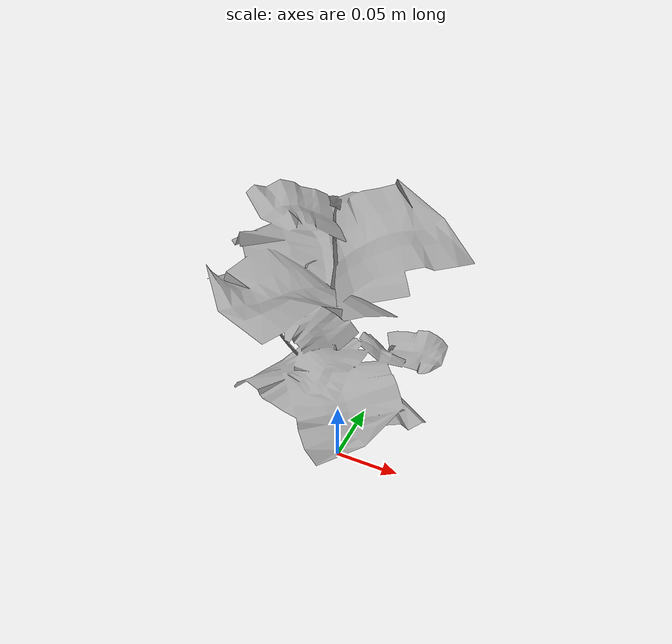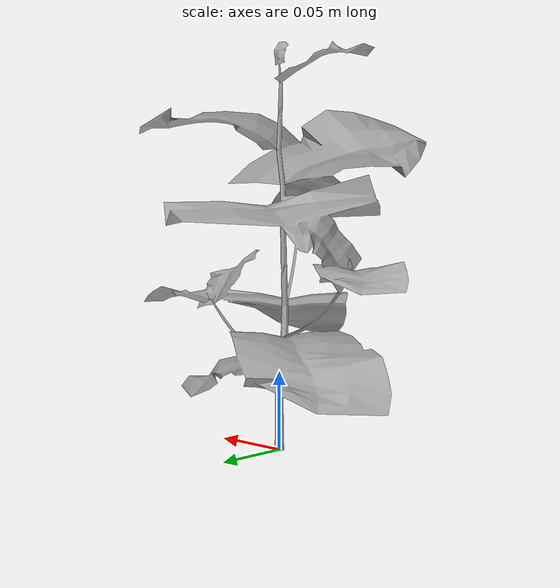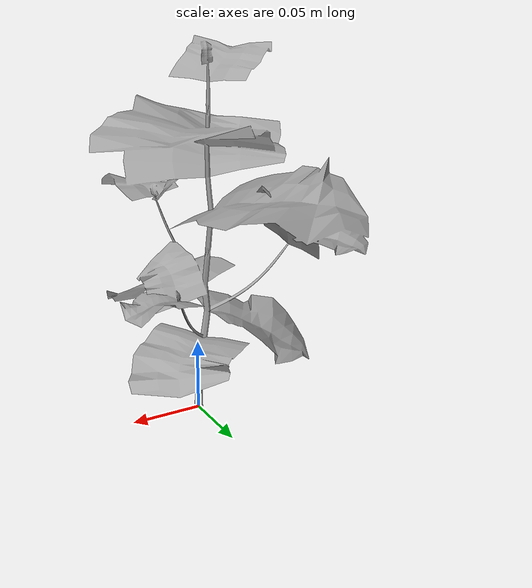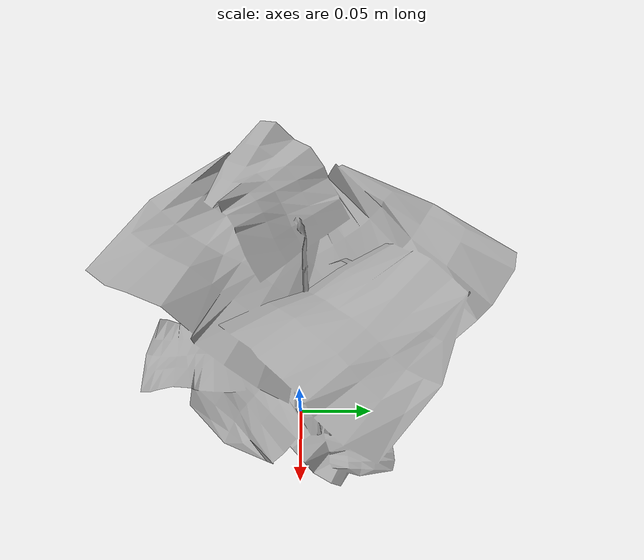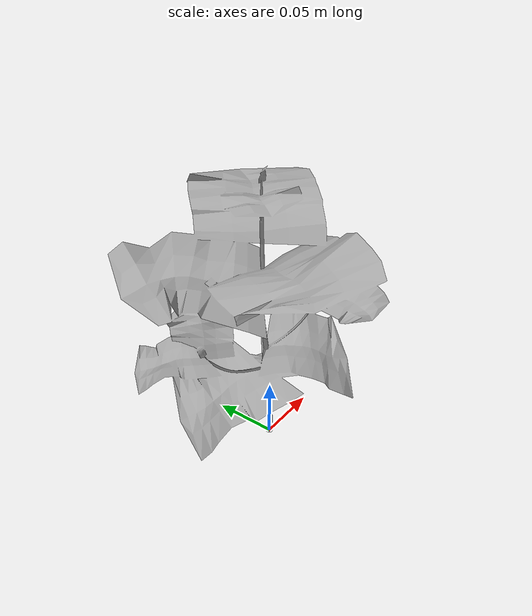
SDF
<?xml version="1.0" ?>
<sdf version="1.5">
	<model name="cotton2">
      <pose>0 0 0  0 0 0</pose>
      <static>true</static>
      <link name="body">
		<collision name="collision">
		    <geometry>
		      <mesh>
		        <uri>model://cotton2/cotton2.dae</uri>
		      </mesh>
		    </geometry>
      	</collision>
        <visual name="visual">
          <geometry>
            <mesh><uri>model://cotton2/cotton2.dae</uri></mesh>
          </geometry>
        </visual>
      </link>
    </model>
</sdf>
